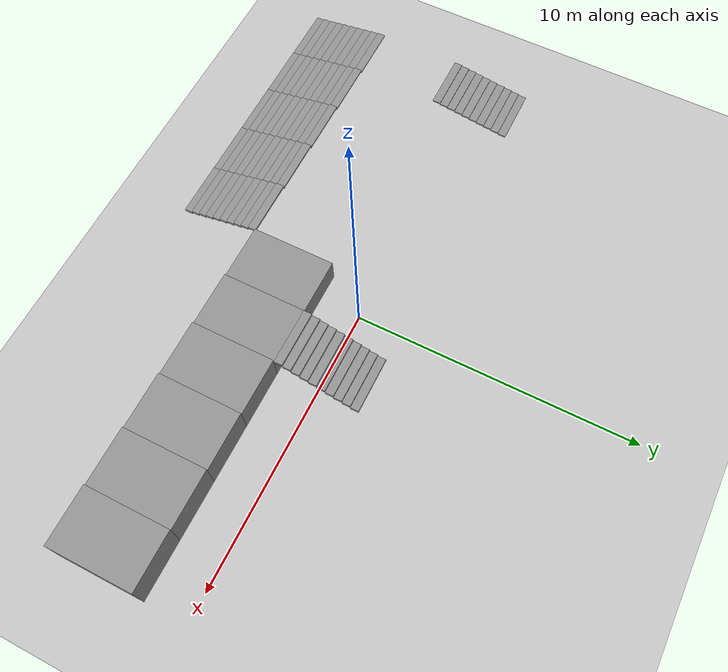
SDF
<sdf version="1.6">
 <world name="default">
  <model name="ground_plane">
   <static>1</static>
   <link name="link">
    <collision name="collision">
     <geometry><plane><normal>0 0 1</normal><size>100 100</size></plane></geometry>
     <surface>
      <contact><collide_bitmask>65535</collide_bitmask></contact>
      <friction><ode><mu>100</mu><mu2>50</mu2></ode></friction>
     </surface>
    </collision>
    <visual name="visual">
     <cast_shadows>0</cast_shadows>
     <geometry><plane><normal>0 0 1</normal><size>100 100</size></plane></geometry>
     <material>
      <script><uri>file://media/materials/scripts/gazebo.material</uri><name>Gazebo/Grey</name></script>
     </material>
    </visual>
   </link>
  </model>
  <model name="StairsWorld3">
   <pose>0 -3 0 0 -0 0</pose>
   <link name="Stairs_35">
    <visual name="Stairs_35_Visual_0">
     <pose>-10 4.35 0.025 0 -0 0</pose>
     <geometry><box><size>2 0.3 0.05</size></box></geometry>
     <material>
      <script><uri>file://media/materials/scripts/gazebo.material</uri><name>Gazebo/Grey</name></script>
      <ambient>1 1 1 1</ambient>
     </material>
     <meta><layer>0</layer></meta>
    </visual>
    <collision name="Stairs_35_Collision_0">
     <geometry><box><size>2 0.3 0.05</size></box></geometry>
     <pose>-10 4.35 0.025 0 -0 0</pose>
    </collision>
    <visual name="Stairs_35_Visual_1">
     <pose>-10 4.05 0.075 0 -0 0</pose>
     <geometry><box><size>2 0.3 0.05</size></box></geometry>
     <material>
      <script><uri>file://media/materials/scripts/gazebo.material</uri><name>Gazebo/Grey</name></script>
      <ambient>1 1 1 1</ambient>
     </material>
     <meta><layer>0</layer></meta>
    </visual>
    <collision name="Stairs_35_Collision_1">
     <geometry><box><size>2 0.3 0.05</size></box></geometry>
     <pose>-10 4.05 0.075 0 -0 0</pose>
    </collision>
    <visual name="Stairs_35_Visual_2">
     <pose>-10 3.75 0.125 0 -0 0</pose>
     <geometry><box><size>2 0.3 0.05</size></box></geometry>
     <material>
      <script><uri>file://media/materials/scripts/gazebo.material</uri><name>Gazebo/Grey</name></script>
      <ambient>1 1 1 1</ambient>
     </material>
     <meta><layer>0</layer></meta>
    </visual>
    <collision name="Stairs_35_Collision_2">
     <geometry><box><size>2 0.3 0.05</size></box></geometry>
     <pose>-10 3.75 0.125 0 -0 0</pose>
    </collision>
    <visual name="Stairs_35_Visual_3">
     <pose>-10 3.45 0.175 0 -0 0</pose>
     <geometry><box><size>2 0.3 0.05</size></box></geometry>
     <material>
      <script><uri>file://media/materials/scripts/gazebo.material</uri><name>Gazebo/Grey</name></script>
      <ambient>1 1 1 1</ambient>
     </material>
     <meta><layer>0</layer></meta>
    </visual>
    <collision name="Stairs_35_Collision_3">
     <geometry><box><size>2 0.3 0.05</size></box></geometry>
     <pose>-10 3.45 0.175 0 -0 0</pose>
    </collision>
    <visual name="Stairs_35_Visual_4">
     <pose>-10 3.15 0.225 0 -0 0</pose>
     <geometry><box><size>2 0.3 0.05</size></box></geometry>
     <material>
      <script><uri>file://media/materials/scripts/gazebo.material</uri><name>Gazebo/Grey</name></script>
      <ambient>1 1 1 1</ambient>
     </material>
     <meta><layer>0</layer></meta>
    </visual>
    <collision name="Stairs_35_Collision_4">
     <geometry><box><size>2 0.3 0.05</size></box></geometry>
     <pose>-10 3.15 0.225 0 -0 0</pose>
    </collision>
    <visual name="Stairs_35_Visual_5">
     <pose>-10 2.85 0.275 0 -0 0</pose>
     <geometry><box><size>2 0.3 0.05</size></box></geometry>
     <material>
      <script><uri>file://media/materials/scripts/gazebo.material</uri><name>Gazebo/Grey</name></script>
      <ambient>1 1 1 1</ambient>
     </material>
     <meta><layer>0</layer></meta>
    </visual>
    <collision name="Stairs_35_Collision_5">
     <geometry><box><size>2 0.3 0.05</size></box></geometry>
     <pose>-10 2.85 0.275 0 -0 0</pose>
    </collision>
    <visual name="Stairs_35_Visual_6">
     <pose>-10 2.55 0.325 0 -0 0</pose>
     <geometry><box><size>2 0.3 0.05</size></box></geometry>
     <material>
      <script><uri>file://media/materials/scripts/gazebo.material</uri><name>Gazebo/Grey</name></script>
      <ambient>1 1 1 1</ambient>
     </material>
     <meta><layer>0</layer></meta>
    </visual>
    <collision name="Stairs_35_Collision_6">
     <geometry><box><size>2 0.3 0.05</size></box></geometry>
     <pose>-10 2.55 0.325 0 -0 0</pose>
    </collision>
    <visual name="Stairs_35_Visual_7">
     <pose>-10 2.25 0.375 0 -0 0</pose>
     <geometry><box><size>2 0.3 0.05</size></box></geometry>
     <material>
      <script><uri>file://media/materials/scripts/gazebo.material</uri><name>Gazebo/Grey</name></script>
      <ambient>1 1 1 1</ambient>
     </material>
     <meta><layer>0</layer></meta>
    </visual>
    <collision name="Stairs_35_Collision_7">
     <geometry><box><size>2 0.3 0.05</size></box></geometry>
     <pose>-10 2.25 0.375 0 -0 0</pose>
    </collision>
    <visual name="Stairs_35_Visual_8">
     <pose>-10 1.95 0.425 0 -0 0</pose>
     <geometry><box><size>2 0.3 0.05</size></box></geometry>
     <material>
      <script><uri>file://media/materials/scripts/gazebo.material</uri><name>Gazebo/Grey</name></script>
      <ambient>1 1 1 1</ambient>
     </material>
     <meta><layer>0</layer></meta>
    </visual>
    <collision name="Stairs_35_Collision_8">
     <geometry><box><size>2 0.3 0.05</size></box></geometry>
     <pose>-10 1.95 0.425 0 -0 0</pose>
    </collision>
    <visual name="Stairs_35_Visual_9">
     <pose>-10 1.65 0.475 0 -0 0</pose>
     <geometry><box><size>2 0.3 0.05</size></box></geometry>
     <material>
      <script><uri>file://media/materials/scripts/gazebo.material</uri><name>Gazebo/Grey</name></script>
      <ambient>1 1 1 1</ambient>
     </material>
     <meta><layer>0</layer></meta>
    </visual>
    <collision name="Stairs_35_Collision_9">
     <geometry><box><size>2 0.3 0.05</size></box></geometry>
     <pose>-10 1.65 0.475 0 -0 0</pose>
    </collision>
   </link>
   <link name="Stairs_37">
    <visual name="Stairs_37_Visual_0">
     <pose>-2 -4.35 0.045 0 0 -3.14159</pose>
     <geometry><box><size>2 0.3 0.09</size></box></geometry>
     <material>
      <script><uri>file://media/materials/scripts/gazebo.material</uri><name>Gazebo/Grey</name></script>
      <ambient>1 1 1 1</ambient>
     </material>
     <meta><layer>0</layer></meta>
    </visual>
    <collision name="Stairs_37_Collision_0">
     <geometry><box><size>2 0.3 0.09</size></box></geometry>
     <pose>-2 -4.35 0.045 0 0 -3.14159</pose>
    </collision>
    <visual name="Stairs_37_Visual_1">
     <pose>-2 -4.05 0.135 0 0 -3.14159</pose>
     <geometry><box><size>2 0.3 0.09</size></box></geometry>
     <material>
      <script><uri>file://media/materials/scripts/gazebo.material</uri><name>Gazebo/Grey</name></script>
      <ambient>1 1 1 1</ambient>
     </material>
     <meta><layer>0</layer></meta>
    </visual>
    <collision name="Stairs_37_Collision_1">
     <geometry><box><size>2 0.3 0.09</size></box></geometry>
     <pose>-2 -4.05 0.135 0 0 -3.14159</pose>
    </collision>
    <visual name="Stairs_37_Visual_2">
     <pose>-2 -3.75 0.225 0 0 -3.14159</pose>
     <geometry><box><size>2 0.3 0.09</size></box></geometry>
     <material>
      <script><uri>file://media/materials/scripts/gazebo.material</uri><name>Gazebo/Grey</name></script>
      <ambient>1 1 1 1</ambient>
     </material>
     <meta><layer>0</layer></meta>
    </visual>
    <collision name="Stairs_37_Collision_2">
     <geometry><box><size>2 0.3 0.09</size></box></geometry>
     <pose>-2 -3.75 0.225 0 0 -3.14159</pose>
    </collision>
    <visual name="Stairs_37_Visual_3">
     <pose>-2 -3.45 0.315 0 0 -3.14159</pose>
     <geometry><box><size>2 0.3 0.09</size></box></geometry>
     <material>
      <script><uri>file://media/materials/scripts/gazebo.material</uri><name>Gazebo/Grey</name></script>
      <ambient>1 1 1 1</ambient>
     </material>
     <meta><layer>0</layer></meta>
    </visual>
    <collision name="Stairs_37_Collision_3">
     <geometry><box><size>2 0.3 0.09</size></box></geometry>
     <pose>-2 -3.45 0.315 0 0 -3.14159</pose>
    </collision>
    <visual name="Stairs_37_Visual_4">
     <pose>-2 -3.15 0.405 0 0 -3.14159</pose>
     <geometry><box><size>2 0.3 0.09</size></box></geometry>
     <material>
      <script><uri>file://media/materials/scripts/gazebo.material</uri><name>Gazebo/Grey</name></script>
      <ambient>1 1 1 1</ambient>
     </material>
     <meta><layer>0</layer></meta>
    </visual>
    <collision name="Stairs_37_Collision_4">
     <geometry><box><size>2 0.3 0.09</size></box></geometry>
     <pose>-2 -3.15 0.405 0 0 -3.14159</pose>
    </collision>
    <visual name="Stairs_37_Visual_5">
     <pose>-2 -2.85 0.495 0 0 -3.14159</pose>
     <geometry><box><size>2 0.3 0.09</size></box></geometry>
     <material>
      <script><uri>file://media/materials/scripts/gazebo.material</uri><name>Gazebo/Grey</name></script>
      <ambient>1 1 1 1</ambient>
     </material>
     <meta><layer>0</layer></meta>
    </visual>
    <collision name="Stairs_37_Collision_5">
     <geometry><box><size>2 0.3 0.09</size></box></geometry>
     <pose>-2 -2.85 0.495 0 0 -3.14159</pose>
    </collision>
    <visual name="Stairs_37_Visual_6">
     <pose>-2 -2.55 0.585 0 0 -3.14159</pose>
     <geometry><box><size>2 0.3 0.09</size></box></geometry>
     <material>
      <script><uri>file://media/materials/scripts/gazebo.material</uri><name>Gazebo/Grey</name></script>
      <ambient>1 1 1 1</ambient>
     </material>
     <meta><layer>0</layer></meta>
    </visual>
    <collision name="Stairs_37_Collision_6">
     <geometry><box><size>2 0.3 0.09</size></box></geometry>
     <pose>-2 -2.55 0.585 0 0 -3.14159</pose>
    </collision>
    <visual name="Stairs_37_Visual_7">
     <pose>-2 -2.25 0.675 0 0 -3.14159</pose>
     <geometry><box><size>2 0.3 0.09</size></box></geometry>
     <material>
      <script><uri>file://media/materials/scripts/gazebo.material</uri><name>Gazebo/Grey</name></script>
      <ambient>1 1 1 1</ambient>
     </material>
     <meta><layer>0</layer></meta>
    </visual>
    <collision name="Stairs_37_Collision_7">
     <geometry><box><size>2 0.3 0.09</size></box></geometry>
     <pose>-2 -2.25 0.675 0 0 -3.14159</pose>
    </collision>
    <visual name="Stairs_37_Visual_8">
     <pose>-2 -1.95 0.765 0 0 -3.14159</pose>
     <geometry><box><size>2 0.3 0.09</size></box></geometry>
     <material>
      <script><uri>file://media/materials/scripts/gazebo.material</uri><name>Gazebo/Grey</name></script>
      <ambient>1 1 1 1</ambient>
     </material>
     <meta><layer>0</layer></meta>
    </visual>
    <collision name="Stairs_37_Collision_8">
     <geometry><box><size>2 0.3 0.09</size></box></geometry>
     <pose>-2 -1.95 0.765 0 0 -3.14159</pose>
    </collision>
    <visual name="Stairs_37_Visual_9">
     <pose>-2 -1.65 0.855 0 0 -3.14159</pose>
     <geometry><box><size>2 0.3 0.09</size></box></geometry>
     <material>
      <script><uri>file://media/materials/scripts/gazebo.material</uri><name>Gazebo/Grey</name></script>
      <ambient>1 1 1 1</ambient>
     </material>
     <meta><layer>0</layer></meta>
    </visual>
    <collision name="Stairs_37_Collision_9">
     <geometry><box><size>2 0.3 0.09</size></box></geometry>
     <pose>-2 -1.65 0.855 0 0 -3.14159</pose>
    </collision>
   </link>
   <link name="Stairs_39">
    <visual name="Stairs_39_Visual_0">
     <pose>-4 -4.35 0.04 0 -0 -3.14159</pose>
     <geometry><box><size>2 0.3 0.08</size></box></geometry>
     <material>
      <script><uri>file://media/materials/scripts/gazebo.material</uri><name>Gazebo/Grey</name></script>
      <ambient>1 1 1 1</ambient>
     </material>
     <meta><layer>0</layer></meta>
    </visual>
    <collision name="Stairs_39_Collision_0">
     <geometry><box><size>2 0.3 0.08</size></box></geometry>
     <pose>-4 -4.35 0.04 0 -0 -3.14159</pose>
    </collision>
    <visual name="Stairs_39_Visual_1">
     <pose>-4 -4.05 0.12 0 -0 -3.14159</pose>
     <geometry><box><size>2 0.3 0.08</size></box></geometry>
     <material>
      <script><uri>file://media/materials/scripts/gazebo.material</uri><name>Gazebo/Grey</name></script>
      <ambient>1 1 1 1</ambient>
     </material>
     <meta><layer>0</layer></meta>
    </visual>
    <collision name="Stairs_39_Collision_1">
     <geometry><box><size>2 0.3 0.08</size></box></geometry>
     <pose>-4 -4.05 0.12 0 -0 -3.14159</pose>
    </collision>
    <visual name="Stairs_39_Visual_2">
     <pose>-4 -3.75 0.2 0 -0 -3.14159</pose>
     <geometry><box><size>2 0.3 0.08</size></box></geometry>
     <material>
      <script><uri>file://media/materials/scripts/gazebo.material</uri><name>Gazebo/Grey</name></script>
      <ambient>1 1 1 1</ambient>
     </material>
     <meta><layer>0</layer></meta>
    </visual>
    <collision name="Stairs_39_Collision_2">
     <geometry><box><size>2 0.3 0.08</size></box></geometry>
     <pose>-4 -3.75 0.2 0 -0 -3.14159</pose>
    </collision>
    <visual name="Stairs_39_Visual_3">
     <pose>-4 -3.45 0.28 0 -0 -3.14159</pose>
     <geometry><box><size>2 0.3 0.08</size></box></geometry>
     <material>
      <script><uri>file://media/materials/scripts/gazebo.material</uri><name>Gazebo/Grey</name></script>
      <ambient>1 1 1 1</ambient>
     </material>
     <meta><layer>0</layer></meta>
    </visual>
    <collision name="Stairs_39_Collision_3">
     <geometry><box><size>2 0.3 0.08</size></box></geometry>
     <pose>-4 -3.45 0.28 0 -0 -3.14159</pose>
    </collision>
    <visual name="Stairs_39_Visual_4">
     <pose>-4 -3.15 0.36 0 -0 -3.14159</pose>
     <geometry><box><size>2 0.3 0.08</size></box></geometry>
     <material>
      <script><uri>file://media/materials/scripts/gazebo.material</uri><name>Gazebo/Grey</name></script>
      <ambient>1 1 1 1</ambient>
     </material>
     <meta><layer>0</layer></meta>
    </visual>
    <collision name="Stairs_39_Collision_4">
     <geometry><box><size>2 0.3 0.08</size></box></geometry>
     <pose>-4 -3.15 0.36 0 -0 -3.14159</pose>
    </collision>
    <visual name="Stairs_39_Visual_5">
     <pose>-4 -2.85 0.44 0 -0 -3.14159</pose>
     <geometry><box><size>2 0.3 0.08</size></box></geometry>
     <material>
      <script><uri>file://media/materials/scripts/gazebo.material</uri><name>Gazebo/Grey</name></script>
      <ambient>1 1 1 1</ambient>
     </material>
     <meta><layer>0</layer></meta>
    </visual>
    <collision name="Stairs_39_Collision_5">
     <geometry><box><size>2 0.3 0.08</size></box></geometry>
     <pose>-4 -2.85 0.44 0 -0 -3.14159</pose>
    </collision>
    <visual name="Stairs_39_Visual_6">
     <pose>-4 -2.55 0.52 0 -0 -3.14159</pose>
     <geometry><box><size>2 0.3 0.08</size></box></geometry>
     <material>
      <script><uri>file://media/materials/scripts/gazebo.material</uri><name>Gazebo/Grey</name></script>
      <ambient>1 1 1 1</ambient>
     </material>
     <meta><layer>0</layer></meta>
    </visual>
    <collision name="Stairs_39_Collision_6">
     <geometry><box><size>2 0.3 0.08</size></box></geometry>
     <pose>-4 -2.55 0.52 0 -0 -3.14159</pose>
    </collision>
    <visual name="Stairs_39_Visual_7">
     <pose>-4 -2.25 0.6 0 -0 -3.14159</pose>
     <geometry><box><size>2 0.3 0.08</size></box></geometry>
     <material>
      <script><uri>file://media/materials/scripts/gazebo.material</uri><name>Gazebo/Grey</name></script>
      <ambient>1 1 1 1</ambient>
     </material>
     <meta><layer>0</layer></meta>
    </visual>
    <collision name="Stairs_39_Collision_7">
     <geometry><box><size>2 0.3 0.08</size></box></geometry>
     <pose>-4 -2.25 0.6 0 -0 -3.14159</pose>
    </collision>
    <visual name="Stairs_39_Visual_8">
     <pose>-4 -1.95 0.68 0 -0 -3.14159</pose>
     <geometry><box><size>2 0.3 0.08</size></box></geometry>
     <material>
      <script><uri>file://media/materials/scripts/gazebo.material</uri><name>Gazebo/Grey</name></script>
      <ambient>1 1 1 1</ambient>
     </material>
     <meta><layer>0</layer></meta>
    </visual>
    <collision name="Stairs_39_Collision_8">
     <geometry><box><size>2 0.3 0.08</size></box></geometry>
     <pose>-4 -1.95 0.68 0 -0 -3.14159</pose>
    </collision>
    <visual name="Stairs_39_Visual_9">
     <pose>-4 -1.65 0.76 0 -0 -3.14159</pose>
     <geometry><box><size>2 0.3 0.08</size></box></geometry>
     <material>
      <script><uri>file://media/materials/scripts/gazebo.material</uri><name>Gazebo/Grey</name></script>
      <ambient>1 1 1 1</ambient>
     </material>
     <meta><layer>0</layer></meta>
    </visual>
    <collision name="Stairs_39_Collision_9">
     <geometry><box><size>2 0.3 0.08</size></box></geometry>
     <pose>-4 -1.65 0.76 0 -0 -3.14159</pose>
    </collision>
   </link>
   <link name="Stairs_41">
    <visual name="Stairs_41_Visual_0">
     <pose>-6 -4.35 0.035 0 -0 -3.14159</pose>
     <geometry><box><size>2 0.3 0.07</size></box></geometry>
     <material>
      <script><uri>file://media/materials/scripts/gazebo.material</uri><name>Gazebo/Grey</name></script>
      <ambient>1 1 1 1</ambient>
     </material>
     <meta><layer>0</layer></meta>
    </visual>
    <collision name="Stairs_41_Collision_0">
     <geometry><box><size>2 0.3 0.07</size></box></geometry>
     <pose>-6 -4.35 0.035 0 -0 -3.14159</pose>
    </collision>
    <visual name="Stairs_41_Visual_1">
     <pose>-6 -4.05 0.105 0 -0 -3.14159</pose>
     <geometry><box><size>2 0.3 0.07</size></box></geometry>
     <material>
      <script><uri>file://media/materials/scripts/gazebo.material</uri><name>Gazebo/Grey</name></script>
      <ambient>1 1 1 1</ambient>
     </material>
     <meta><layer>0</layer></meta>
    </visual>
    <collision name="Stairs_41_Collision_1">
     <geometry><box><size>2 0.3 0.07</size></box></geometry>
     <pose>-6 -4.05 0.105 0 -0 -3.14159</pose>
    </collision>
    <visual name="Stairs_41_Visual_2">
     <pose>-6 -3.75 0.175 0 -0 -3.14159</pose>
     <geometry><box><size>2 0.3 0.07</size></box></geometry>
     <material>
      <script><uri>file://media/materials/scripts/gazebo.material</uri><name>Gazebo/Grey</name></script>
      <ambient>1 1 1 1</ambient>
     </material>
     <meta><layer>0</layer></meta>
    </visual>
    <collision name="Stairs_41_Collision_2">
     <geometry><box><size>2 0.3 0.07</size></box></geometry>
     <pose>-6 -3.75 0.175 0 -0 -3.14159</pose>
    </collision>
    <visual name="Stairs_41_Visual_3">
     <pose>-6 -3.45 0.245 0 -0 -3.14159</pose>
     <geometry><box><size>2 0.3 0.07</size></box></geometry>
     <material>
      <script><uri>file://media/materials/scripts/gazebo.material</uri><name>Gazebo/Grey</name></script>
      <ambient>1 1 1 1</ambient>
     </material>
     <meta><layer>0</layer></meta>
    </visual>
    <collision name="Stairs_41_Collision_3">
     <geometry><box><size>2 0.3 0.07</size></box></geometry>
     <pose>-6 -3.45 0.245 0 -0 -3.14159</pose>
    </collision>
    <visual name="Stairs_41_Visual_4">
     <pose>-6 -3.15 0.315 0 -0 -3.14159</pose>
     <geometry><box><size>2 0.3 0.07</size></box></geometry>
     <material>
      <script><uri>file://media/materials/scripts/gazebo.material</uri><name>Gazebo/Grey</name></script>
      <ambient>1 1 1 1</ambient>
     </material>
     <meta><layer>0</layer></meta>
    </visual>
    <collision name="Stairs_41_Collision_4">
     <geometry><box><size>2 0.3 0.07</size></box></geometry>
     <pose>-6 -3.15 0.315 0 -0 -3.14159</pose>
    </collision>
    <visual name="Stairs_41_Visual_5">
     <pose>-6 -2.85 0.385 0 -0 -3.14159</pose>
     <geometry><box><size>2 0.3 0.07</size></box></geometry>
     <material>
      <script><uri>file://media/materials/scripts/gazebo.material</uri><name>Gazebo/Grey</name></script>
      <ambient>1 1 1 1</ambient>
     </material>
     <meta><layer>0</layer></meta>
    </visual>
    <collision name="Stairs_41_Collision_5">
     <geometry><box><size>2 0.3 0.07</size></box></geometry>
     <pose>-6 -2.85 0.385 0 -0 -3.14159</pose>
    </collision>
    <visual name="Stairs_41_Visual_6">
     <pose>-6 -2.55 0.455 0 -0 -3.14159</pose>
     <geometry><box><size>2 0.3 0.07</size></box></geometry>
     <material>
      <script><uri>file://media/materials/scripts/gazebo.material</uri><name>Gazebo/Grey</name></script>
      <ambient>1 1 1 1</ambient>
     </material>
     <meta><layer>0</layer></meta>
    </visual>
    <collision name="Stairs_41_Collision_6">
     <geometry><box><size>2 0.3 0.07</size></box></geometry>
     <pose>-6 -2.55 0.455 0 -0 -3.14159</pose>
    </collision>
    <visual name="Stairs_41_Visual_7">
     <pose>-6 -2.25 0.525 0 -0 -3.14159</pose>
     <geometry><box><size>2 0.3 0.07</size></box></geometry>
     <material>
      <script><uri>file://media/materials/scripts/gazebo.material</uri><name>Gazebo/Grey</name></script>
      <ambient>1 1 1 1</ambient>
     </material>
     <meta><layer>0</layer></meta>
    </visual>
    <collision name="Stairs_41_Collision_7">
     <geometry><box><size>2 0.3 0.07</size></box></geometry>
     <pose>-6 -2.25 0.525 0 -0 -3.14159</pose>
    </collision>
    <visual name="Stairs_41_Visual_8">
     <pose>-6 -1.95 0.595 0 -0 -3.14159</pose>
     <geometry><box><size>2 0.3 0.07</size></box></geometry>
     <material>
      <script><uri>file://media/materials/scripts/gazebo.material</uri><name>Gazebo/Grey</name></script>
      <ambient>1 1 1 1</ambient>
     </material>
     <meta><layer>0</layer></meta>
    </visual>
    <collision name="Stairs_41_Collision_8">
     <geometry><box><size>2 0.3 0.07</size></box></geometry>
     <pose>-6 -1.95 0.595 0 -0 -3.14159</pose>
    </collision>
    <visual name="Stairs_41_Visual_9">
     <pose>-6 -1.65 0.665 0 -0 -3.14159</pose>
     <geometry><box><size>2 0.3 0.07</size></box></geometry>
     <material>
      <script><uri>file://media/materials/scripts/gazebo.material</uri><name>Gazebo/Grey</name></script>
      <ambient>1 1 1 1</ambient>
     </material>
     <meta><layer>0</layer></meta>
    </visual>
    <collision name="Stairs_41_Collision_9">
     <geometry><box><size>2 0.3 0.07</size></box></geometry>
     <pose>-6 -1.65 0.665 0 -0 -3.14159</pose>
    </collision>
   </link>
   <link name="Stairs_43">
    <visual name="Stairs_43_Visual_0">
     <pose>-8 -4.35 0.03 0 0 -3.14159</pose>
     <geometry><box><size>2 0.3 0.06</size></box></geometry>
     <material>
      <script><uri>file://media/materials/scripts/gazebo.material</uri><name>Gazebo/Grey</name></script>
      <ambient>1 1 1 1</ambient>
     </material>
     <meta><layer>0</layer></meta>
    </visual>
    <collision name="Stairs_43_Collision_0">
     <geometry><box><size>2 0.3 0.06</size></box></geometry>
     <pose>-8 -4.35 0.03 0 0 -3.14159</pose>
    </collision>
    <visual name="Stairs_43_Visual_1">
     <pose>-8 -4.05 0.09 0 0 -3.14159</pose>
     <geometry><box><size>2 0.3 0.06</size></box></geometry>
     <material>
      <script><uri>file://media/materials/scripts/gazebo.material</uri><name>Gazebo/Grey</name></script>
      <ambient>1 1 1 1</ambient>
     </material>
     <meta><layer>0</layer></meta>
    </visual>
    <collision name="Stairs_43_Collision_1">
     <geometry><box><size>2 0.3 0.06</size></box></geometry>
     <pose>-8 -4.05 0.09 0 0 -3.14159</pose>
    </collision>
    <visual name="Stairs_43_Visual_2">
     <pose>-8 -3.75 0.15 0 0 -3.14159</pose>
     <geometry><box><size>2 0.3 0.06</size></box></geometry>
     <material>
      <script><uri>file://media/materials/scripts/gazebo.material</uri><name>Gazebo/Grey</name></script>
      <ambient>1 1 1 1</ambient>
     </material>
     <meta><layer>0</layer></meta>
    </visual>
    <collision name="Stairs_43_Collision_2">
     <geometry><box><size>2 0.3 0.06</size></box></geometry>
     <pose>-8 -3.75 0.15 0 0 -3.14159</pose>
    </collision>
    <visual name="Stairs_43_Visual_3">
     <pose>-8 -3.45 0.21 0 0 -3.14159</pose>
     <geometry><box><size>2 0.3 0.06</size></box></geometry>
     <material>
      <script><uri>file://media/materials/scripts/gazebo.material</uri><name>Gazebo/Grey</name></script>
      <ambient>1 1 1 1</ambient>
     </material>
     <meta><layer>0</layer></meta>
    </visual>
    <collision name="Stairs_43_Collision_3">
     <geometry><box><size>2 0.3 0.06</size></box></geometry>
     <pose>-8 -3.45 0.21 0 0 -3.14159</pose>
    </collision>
    <visual name="Stairs_43_Visual_4">
     <pose>-8 -3.15 0.27 0 0 -3.14159</pose>
     <geometry><box><size>2 0.3 0.06</size></box></geometry>
     <material>
      <script><uri>file://media/materials/scripts/gazebo.material</uri><name>Gazebo/Grey</name></script>
      <ambient>1 1 1 1</ambient>
     </material>
     <meta><layer>0</layer></meta>
    </visual>
    <collision name="Stairs_43_Collision_4">
     <geometry><box><size>2 0.3 0.06</size></box></geometry>
     <pose>-8 -3.15 0.27 0 0 -3.14159</pose>
    </collision>
    <visual name="Stairs_43_Visual_5">
     <pose>-8 -2.85 0.33 0 0 -3.14159</pose>
     <geometry><box><size>2 0.3 0.06</size></box></geometry>
     <material>
      <script><uri>file://media/materials/scripts/gazebo.material</uri><name>Gazebo/Grey</name></script>
      <ambient>1 1 1 1</ambient>
     </material>
     <meta><layer>0</layer></meta>
    </visual>
    <collision name="Stairs_43_Collision_5">
     <geometry><box><size>2 0.3 0.06</size></box></geometry>
     <pose>-8 -2.85 0.33 0 0 -3.14159</pose>
    </collision>
    <visual name="Stairs_43_Visual_6">
     <pose>-8 -2.55 0.39 0 0 -3.14159</pose>
     <geometry><box><size>2 0.3 0.06</size></box></geometry>
     <material>
      <script><uri>file://media/materials/scripts/gazebo.material</uri><name>Gazebo/Grey</name></script>
      <ambient>1 1 1 1</ambient>
     </material>
     <meta><layer>0</layer></meta>
    </visual>
    <collision name="Stairs_43_Collision_6">
     <geometry><box><size>2 0.3 0.06</size></box></geometry>
     <pose>-8 -2.55 0.39 0 0 -3.14159</pose>
    </collision>
    <visual name="Stairs_43_Visual_7">
     <pose>-8 -2.25 0.45 0 0 -3.14159</pose>
     <geometry><box><size>2 0.3 0.06</size></box></geometry>
     <material>
      <script><uri>file://media/materials/scripts/gazebo.material</uri><name>Gazebo/Grey</name></script>
      <ambient>1 1 1 1</ambient>
     </material>
     <meta><layer>0</layer></meta>
    </visual>
    <collision name="Stairs_43_Collision_7">
     <geometry><box><size>2 0.3 0.06</size></box></geometry>
     <pose>-8 -2.25 0.45 0 0 -3.14159</pose>
    </collision>
    <visual name="Stairs_43_Visual_8">
     <pose>-8 -1.95 0.51 0 0 -3.14159</pose>
     <geometry><box><size>2 0.3 0.06</size></box></geometry>
     <material>
      <script><uri>file://media/materials/scripts/gazebo.material</uri><name>Gazebo/Grey</name></script>
      <ambient>1 1 1 1</ambient>
     </material>
     <meta><layer>0</layer></meta>
    </visual>
    <collision name="Stairs_43_Collision_8">
     <geometry><box><size>2 0.3 0.06</size></box></geometry>
     <pose>-8 -1.95 0.51 0 0 -3.14159</pose>
    </collision>
    <visual name="Stairs_43_Visual_9">
     <pose>-8 -1.65 0.57 0 0 -3.14159</pose>
     <geometry><box><size>2 0.3 0.06</size></box></geometry>
     <material>
      <script><uri>file://media/materials/scripts/gazebo.material</uri><name>Gazebo/Grey</name></script>
      <ambient>1 1 1 1</ambient>
     </material>
     <meta><layer>0</layer></meta>
    </visual>
    <collision name="Stairs_43_Collision_9">
     <geometry><box><size>2 0.3 0.06</size></box></geometry>
     <pose>-8 -1.65 0.57 0 0 -3.14159</pose>
    </collision>
   </link>
   <link name="Stairs_45">
    <visual name="Stairs_45_Visual_0">
     <pose>-10 -4.35 0.025 0 -0 -3.14159</pose>
     <geometry><box><size>2 0.3 0.05</size></box></geometry>
     <material>
      <script><uri>file://media/materials/scripts/gazebo.material</uri><name>Gazebo/Grey</name></script>
      <ambient>1 1 1 1</ambient>
     </material>
     <meta><layer>0</layer></meta>
    </visual>
    <collision name="Stairs_45_Collision_0">
     <geometry><box><size>2 0.3 0.05</size></box></geometry>
     <pose>-10 -4.35 0.025 0 -0 -3.14159</pose>
    </collision>
    <visual name="Stairs_45_Visual_1">
     <pose>-10 -4.05 0.075 0 -0 -3.14159</pose>
     <geometry><box><size>2 0.3 0.05</size></box></geometry>
     <material>
      <script><uri>file://media/materials/scripts/gazebo.material</uri><name>Gazebo/Grey</name></script>
      <ambient>1 1 1 1</ambient>
     </material>
     <meta><layer>0</layer></meta>
    </visual>
    <collision name="Stairs_45_Collision_1">
     <geometry><box><size>2 0.3 0.05</size></box></geometry>
     <pose>-10 -4.05 0.075 0 -0 -3.14159</pose>
    </collision>
    <visual name="Stairs_45_Visual_2">
     <pose>-10 -3.75 0.125 0 -0 -3.14159</pose>
     <geometry><box><size>2 0.3 0.05</size></box></geometry>
     <material>
      <script><uri>file://media/materials/scripts/gazebo.material</uri><name>Gazebo/Grey</name></script>
      <ambient>1 1 1 1</ambient>
     </material>
     <meta><layer>0</layer></meta>
    </visual>
    <collision name="Stairs_45_Collision_2">
     <geometry><box><size>2 0.3 0.05</size></box></geometry>
     <pose>-10 -3.75 0.125 0 -0 -3.14159</pose>
    </collision>
    <visual name="Stairs_45_Visual_3">
     <pose>-10 -3.45 0.175 0 -0 -3.14159</pose>
     <geometry><box><size>2 0.3 0.05</size></box></geometry>
     <material>
      <script><uri>file://media/materials/scripts/gazebo.material</uri><name>Gazebo/Grey</name></script>
      <ambient>1 1 1 1</ambient>
     </material>
     <meta><layer>0</layer></meta>
    </visual>
    <collision name="Stairs_45_Collision_3">
     <geometry><box><size>2 0.3 0.05</size></box></geometry>
     <pose>-10 -3.45 0.175 0 -0 -3.14159</pose>
    </collision>
    <visual name="Stairs_45_Visual_4">
     <pose>-10 -3.15 0.225 0 -0 -3.14159</pose>
     <geometry><box><size>2 0.3 0.05</size></box></geometry>
     <material>
      <script><uri>file://media/materials/scripts/gazebo.material</uri><name>Gazebo/Grey</name></script>
      <ambient>1 1 1 1</ambient>
     </material>
     <meta><layer>0</layer></meta>
    </visual>
    <collision name="Stairs_45_Collision_4">
     <geometry><box><size>2 0.3 0.05</size></box></geometry>
     <pose>-10 -3.15 0.225 0 -0 -3.14159</pose>
    </collision>
    <visual name="Stairs_45_Visual_5">
     <pose>-10 -2.85 0.275 0 -0 -3.14159</pose>
     <geometry><box><size>2 0.3 0.05</size></box></geometry>
     <material>
      <script><uri>file://media/materials/scripts/gazebo.material</uri><name>Gazebo/Grey</name></script>
      <ambient>1 1 1 1</ambient>
     </material>
     <meta><layer>0</layer></meta>
    </visual>
    <collision name="Stairs_45_Collision_5">
     <geometry><box><size>2 0.3 0.05</size></box></geometry>
     <pose>-10 -2.85 0.275 0 -0 -3.14159</pose>
    </collision>
    <visual name="Stairs_45_Visual_6">
     <pose>-10 -2.55 0.325 0 -0 -3.14159</pose>
     <geometry><box><size>2 0.3 0.05</size></box></geometry>
     <material>
      <script><uri>file://media/materials/scripts/gazebo.material</uri><name>Gazebo/Grey</name></script>
      <ambient>1 1 1 1</ambient>
     </material>
     <meta><layer>0</layer></meta>
    </visual>
    <collision name="Stairs_45_Collision_6">
     <geometry><box><size>2 0.3 0.05</size></box></geometry>
     <pose>-10 -2.55 0.325 0 -0 -3.14159</pose>
    </collision>
    <visual name="Stairs_45_Visual_7">
     <pose>-10 -2.25 0.375 0 -0 -3.14159</pose>
     <geometry><box><size>2 0.3 0.05</size></box></geometry>
     <material>
      <script><uri>file://media/materials/scripts/gazebo.material</uri><name>Gazebo/Grey</name></script>
      <ambient>1 1 1 1</ambient>
     </material>
     <meta><layer>0</layer></meta>
    </visual>
    <collision name="Stairs_45_Collision_7">
     <geometry><box><size>2 0.3 0.05</size></box></geometry>
     <pose>-10 -2.25 0.375 0 -0 -3.14159</pose>
    </collision>
    <visual name="Stairs_45_Visual_8">
     <pose>-10 -1.95 0.425 0 -0 -3.14159</pose>
     <geometry><box><size>2 0.3 0.05</size></box></geometry>
     <material>
      <script><uri>file://media/materials/scripts/gazebo.material</uri><name>Gazebo/Grey</name></script>
      <ambient>1 1 1 1</ambient>
     </material>
     <meta><layer>0</layer></meta>
    </visual>
    <collision name="Stairs_45_Collision_8">
     <geometry><box><size>2 0.3 0.05</size></box></geometry>
     <pose>-10 -1.95 0.425 0 -0 -3.14159</pose>
    </collision>
    <visual name="Stairs_45_Visual_9">
     <pose>-10 -1.65 0.475 0 -0 -3.14159</pose>
     <geometry><box><size>2 0.3 0.05</size></box></geometry>
     <material>
      <script><uri>file://media/materials/scripts/gazebo.material</uri><name>Gazebo/Grey</name></script>
      <ambient>1 1 1 1</ambient>
     </material>
     <meta><layer>0</layer></meta>
    </visual>
    <collision name="Stairs_45_Collision_9">
     <geometry><box><size>2 0.3 0.05</size></box></geometry>
     <pose>-10 -1.65 0.475 0 -0 -3.14159</pose>
    </collision>
   </link>
   <link name="Stairs_9">
    <visual name="Stairs_9_Visual_0">
     <pose>2 4.35 0.055 0 -0 0</pose>
     <geometry><box><size>2 0.3 0.11</size></box></geometry>
     <material>
      <script><uri>file://media/materials/scripts/gazebo.material</uri><name>Gazebo/Grey</name></script>
      <ambient>1 1 1 1</ambient>
     </material>
     <meta><layer>0</layer></meta>
    </visual>
    <collision name="Stairs_9_Collision_0">
     <geometry><box><size>2 0.3 0.11</size></box></geometry>
     <pose>2 4.35 0.055 0 -0 0</pose>
    </collision>
    <visual name="Stairs_9_Visual_1">
     <pose>2 4.05 0.165 0 -0 0</pose>
     <geometry><box><size>2 0.3 0.11</size></box></geometry>
     <material>
      <script><uri>file://media/materials/scripts/gazebo.material</uri><name>Gazebo/Grey</name></script>
      <ambient>1 1 1 1</ambient>
     </material>
     <meta><layer>0</layer></meta>
    </visual>
    <collision name="Stairs_9_Collision_1">
     <geometry><box><size>2 0.3 0.11</size></box></geometry>
     <pose>2 4.05 0.165 0 -0 0</pose>
    </collision>
    <visual name="Stairs_9_Visual_2">
     <pose>2 3.75 0.275 0 -0 0</pose>
     <geometry><box><size>2 0.3 0.11</size></box></geometry>
     <material>
      <script><uri>file://media/materials/scripts/gazebo.material</uri><name>Gazebo/Grey</name></script>
      <ambient>1 1 1 1</ambient>
     </material>
     <meta><layer>0</layer></meta>
    </visual>
    <collision name="Stairs_9_Collision_2">
     <geometry><box><size>2 0.3 0.11</size></box></geometry>
     <pose>2 3.75 0.275 0 -0 0</pose>
    </collision>
    <visual name="Stairs_9_Visual_3">
     <pose>2 3.45 0.385 0 -0 0</pose>
     <geometry><box><size>2 0.3 0.11</size></box></geometry>
     <material>
      <script><uri>file://media/materials/scripts/gazebo.material</uri><name>Gazebo/Grey</name></script>
      <ambient>1 1 1 1</ambient>
     </material>
     <meta><layer>0</layer></meta>
    </visual>
    <collision name="Stairs_9_Collision_3">
     <geometry><box><size>2 0.3 0.11</size></box></geometry>
     <pose>2 3.45 0.385 0 -0 0</pose>
    </collision>
    <visual name="Stairs_9_Visual_4">
     <pose>2 3.15 0.495 0 -0 0</pose>
     <geometry><box><size>2 0.3 0.11</size></box></geometry>
     <material>
      <script><uri>file://media/materials/scripts/gazebo.material</uri><name>Gazebo/Grey</name></script>
      <ambient>1 1 1 1</ambient>
     </material>
     <meta><layer>0</layer></meta>
    </visual>
    <collision name="Stairs_9_Collision_4">
     <geometry><box><size>2 0.3 0.11</size></box></geometry>
     <pose>2 3.15 0.495 0 -0 0</pose>
    </collision>
    <visual name="Stairs_9_Visual_5">
     <pose>2 2.85 0.605 0 -0 0</pose>
     <geometry><box><size>2 0.3 0.11</size></box></geometry>
     <material>
      <script><uri>file://media/materials/scripts/gazebo.material</uri><name>Gazebo/Grey</name></script>
      <ambient>1 1 1 1</ambient>
     </material>
     <meta><layer>0</layer></meta>
    </visual>
    <collision name="Stairs_9_Collision_5">
     <geometry><box><size>2 0.3 0.11</size></box></geometry>
     <pose>2 2.85 0.605 0 -0 0</pose>
    </collision>
    <visual name="Stairs_9_Visual_6">
     <pose>2 2.55 0.715 0 -0 0</pose>
     <geometry><box><size>2 0.3 0.11</size></box></geometry>
     <material>
      <script><uri>file://media/materials/scripts/gazebo.material</uri><name>Gazebo/Grey</name></script>
      <ambient>1 1 1 1</ambient>
     </material>
     <meta><layer>0</layer></meta>
    </visual>
    <collision name="Stairs_9_Collision_6">
     <geometry><box><size>2 0.3 0.11</size></box></geometry>
     <pose>2 2.55 0.715 0 -0 0</pose>
    </collision>
    <visual name="Stairs_9_Visual_7">
     <pose>2 2.25 0.825 0 -0 0</pose>
     <geometry><box><size>2 0.3 0.11</size></box></geometry>
     <material>
      <script><uri>file://media/materials/scripts/gazebo.material</uri><name>Gazebo/Grey</name></script>
      <ambient>1 1 1 1</ambient>
     </material>
     <meta><layer>0</layer></meta>
    </visual>
    <collision name="Stairs_9_Collision_7">
     <geometry><box><size>2 0.3 0.11</size></box></geometry>
     <pose>2 2.25 0.825 0 -0 0</pose>
    </collision>
    <visual name="Stairs_9_Visual_8">
     <pose>2 1.95 0.935 0 -0 0</pose>
     <geometry><box><size>2 0.3 0.11</size></box></geometry>
     <material>
      <script><uri>file://media/materials/scripts/gazebo.material</uri><name>Gazebo/Grey</name></script>
      <ambient>1 1 1 1</ambient>
     </material>
     <meta><layer>0</layer></meta>
    </visual>
    <collision name="Stairs_9_Collision_8">
     <geometry><box><size>2 0.3 0.11</size></box></geometry>
     <pose>2 1.95 0.935 0 -0 0</pose>
    </collision>
    <visual name="Stairs_9_Visual_9">
     <pose>2 1.65 1.045 0 -0 0</pose>
     <geometry><box><size>2 0.3 0.11</size></box></geometry>
     <material>
      <script><uri>file://media/materials/scripts/gazebo.material</uri><name>Gazebo/Grey</name></script>
      <ambient>1 1 1 1</ambient>
     </material>
     <meta><layer>0</layer></meta>
    </visual>
    <collision name="Stairs_9_Collision_9">
     <geometry><box><size>2 0.3 0.11</size></box></geometry>
     <pose>2 1.65 1.045 0 -0 0</pose>
    </collision>
   </link>
   <link name="Wall_0">
    <collision name="Wall_0_Collision">
     <geometry><box><size>3 2 1</size></box></geometry>
     <pose>0 0 0.5 0 -0 0</pose>
    </collision>
    <visual name="Wall_0_Visual">
     <pose>0 0 0.5 0 -0 0</pose>
     <geometry><box><size>3 2 1</size></box></geometry>
     <material>
      <script><uri>file://media/materials/scripts/gazebo.material</uri><name>Gazebo/Grey</name></script>
      <ambient>1 1 1 1</ambient>
     </material>
     <meta><layer>0</layer></meta>
    </visual>
    <pose>0 0 0 0 -0 -1.5708</pose>
   </link>
   <link name="Wall_11">
    <collision name="Wall_11_Collision">
     <geometry><box><size>3 2 1.5</size></box></geometry>
     <pose>0 0 0.75 0 -0 0</pose>
    </collision>
    <visual name="Wall_11_Visual">
     <pose>0 0 0.75 0 -0 0</pose>
     <geometry><box><size>3 2 1.5</size></box></geometry>
     <material>
      <script><uri>file://media/materials/scripts/gazebo.material</uri><name>Gazebo/Grey</name></script>
      <ambient>1 1 1 1</ambient>
     </material>
     <meta><layer>0</layer></meta>
    </visual>
    <pose>10 0 0 0 -0 -1.5708</pose>
   </link>
   <link name="Wall_3">
    <collision name="Wall_3_Collision">
     <geometry><box><size>3 2 1.1</size></box></geometry>
     <pose>0 0 0.55 0 -0 0</pose>
    </collision>
    <visual name="Wall_3_Visual">
     <pose>0 0 0.55 0 -0 0</pose>
     <geometry><box><size>3 2 1.1</size></box></geometry>
     <material>
      <script><uri>file://media/materials/scripts/gazebo.material</uri><name>Gazebo/Grey</name></script>
      <ambient>1 1 1 1</ambient>
     </material>
     <meta><layer>0</layer></meta>
    </visual>
    <pose>2 0 0 0 -0 -1.5708</pose>
   </link>
   <link name="Wall_5">
    <collision name="Wall_5_Collision">
     <geometry><box><size>3 2 1.2</size></box></geometry>
     <pose>0 0 0.6 0 -0 0</pose>
    </collision>
    <visual name="Wall_5_Visual">
     <pose>0 0 0.6 0 -0 0</pose>
     <geometry><box><size>3 2 1.2</size></box></geometry>
     <material>
      <script><uri>file://media/materials/scripts/gazebo.material</uri><name>Gazebo/Grey</name></script>
      <ambient>1 1 1 1</ambient>
     </material>
     <meta><layer>0</layer></meta>
    </visual>
    <pose>4 0 0 0 -0 -1.5708</pose>
   </link>
   <link name="Wall_7">
    <collision name="Wall_7_Collision">
     <geometry><box><size>3 2 1.3</size></box></geometry>
     <pose>0 0 0.65 0 -0 0</pose>
    </collision>
    <visual name="Wall_7_Visual">
     <pose>0 0 0.65 0 -0 0</pose>
     <geometry><box><size>3 2 1.3</size></box></geometry>
     <material>
      <script><uri>file://media/materials/scripts/gazebo.material</uri><name>Gazebo/Grey</name></script>
      <ambient>1 1 1 1</ambient>
     </material>
     <meta><layer>0</layer></meta>
    </visual>
    <pose>6 0 0 0 -0 -1.5708</pose>
   </link>
   <link name="Wall_9">
    <collision name="Wall_9_Collision">
     <geometry><box><size>3 2 1.4</size></box></geometry>
     <pose>0 0 0.7 0 -0 0</pose>
    </collision>
    <visual name="Wall_9_Visual">
     <pose>0 0 0.7 0 -0 0</pose>
     <geometry><box><size>3 2 1.4</size></box></geometry>
     <material>
      <script><uri>file://media/materials/scripts/gazebo.material</uri><name>Gazebo/Grey</name></script>
      <ambient>1 1 1 1</ambient>
     </material>
     <meta><layer>0</layer></meta>
    </visual>
    <pose>8 0 0 0 -0 -1.5708</pose>
   </link>
   <static>1</static>
  </model>
 </world>
</sdf>
